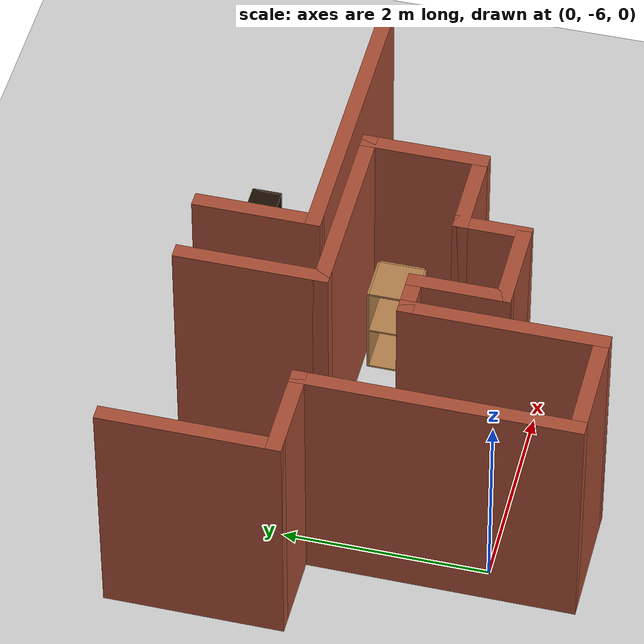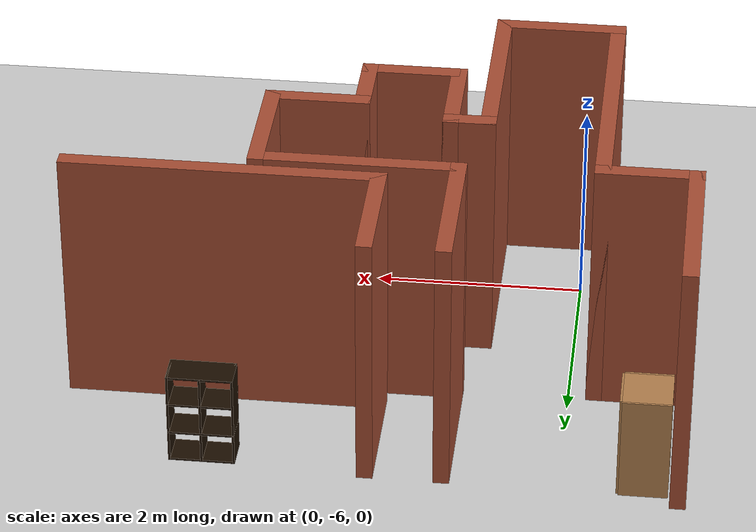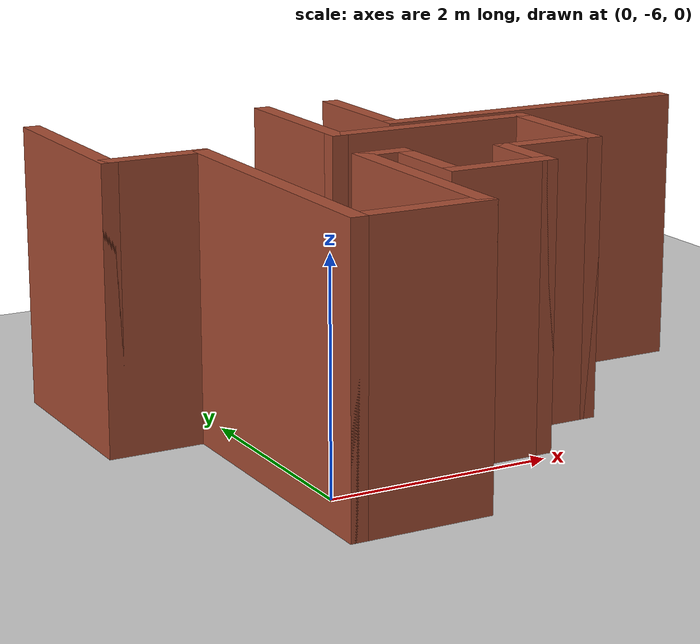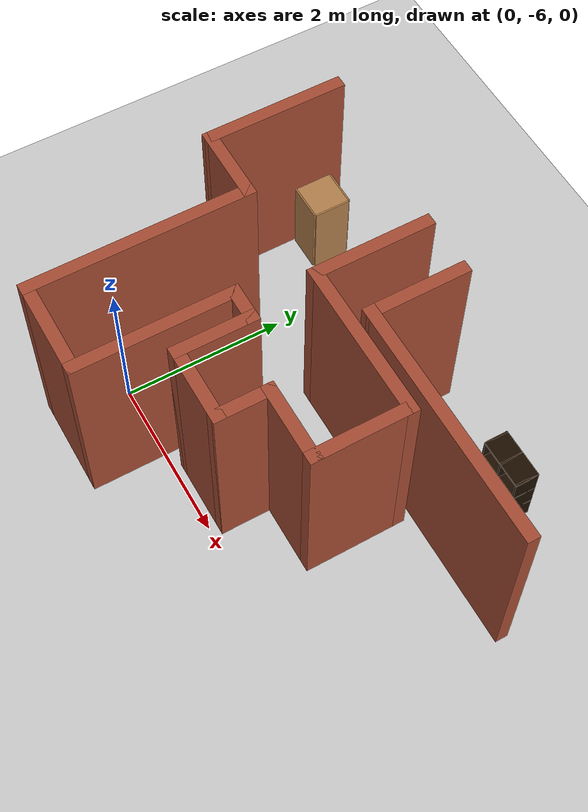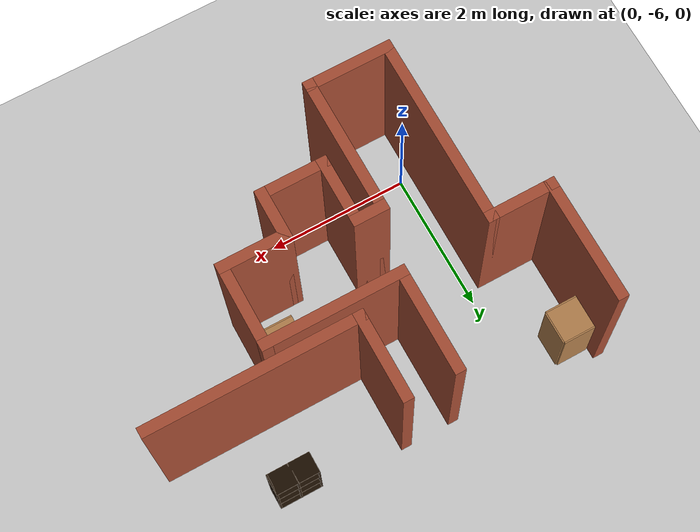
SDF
<sdf version="1.6">
 <world name="default">
  <model name="ground_plane">
   <static>1</static>
   <link name="link">
    <collision name="collision">
     <geometry><plane><normal>0 0 1</normal><size>100 100</size></plane></geometry>
     <surface><friction><ode><mu>100</mu><mu2>50</mu2></ode></friction></surface>
    </collision>
    <visual name="visual">
     <cast_shadows>0</cast_shadows>
     <geometry><plane><normal>0 0 1</normal><size>100 100</size></plane></geometry>
     <material>
      <script><uri>file://media/materials/scripts/gazebo.material</uri><name>Gazebo/Grey</name></script>
     </material>
    </visual>
   </link>
  </model>
  <model name="map_40">
   <link name="Wall_23">
    <pose>-2.475 -2.32798 0 0 0 -1.5708</pose>
    <visual name="Wall_23_Visual">
     <pose>0 0 1.25 0 -0 0</pose>
     <geometry><box><size>1.75 0.15 2.5</size></box></geometry>
     <material>
      <script><uri>file://media/materials/scripts/gazebo.material</uri><name>Gazebo/Bricks</name></script>
      <ambient>1 1 1 1</ambient>
      <shader type="pixel"/>
     </material>
     <meta><layer>0</layer></meta>
    </visual>
    <collision name="Wall_23_Collision">
     <pose>0 0 1.25 0 -0 0</pose>
     <geometry><box><size>1.75 0.15 2.5</size></box></geometry>
     <surface>
      <friction>
       <ode><mu>1</mu><mu2>1</mu2><fdir1>0 0 0</fdir1><slip1>0</slip1><slip2>0</slip2></ode>
       <torsional>
        <coefficient>1</coefficient>
        <patch_radius>0</patch_radius>
        <surface_radius>0</surface_radius>
        <use_patch_radius>1</use_patch_radius>
        <ode><slip>0</slip></ode>
       </torsional>
      </friction>
      <bounce><restitution_coefficient>0</restitution_coefficient><threshold>1e+06</threshold></bounce>
      <contact>
       <collide_without_contact>0</collide_without_contact>
       <collide_without_contact_bitmask>1</collide_without_contact_bitmask>
       <collide_bitmask>1</collide_bitmask>
       <ode>
        <soft_cfm>0</soft_cfm>
        <soft_erp>0.2</soft_erp>
        <kp>1e+13</kp>
        <kd>1</kd>
        <max_vel>0.01</max_vel>
        <min_depth>0</min_depth>
       </ode>
       <bullet>
        <split_impulse>1</split_impulse>
        <split_impulse_penetration_threshold>-0.01</split_impulse_penetration_threshold>
        <soft_cfm>0</soft_cfm>
        <soft_erp>0.2</soft_erp>
        <kp>1e+13</kp>
        <kd>1</kd>
       </bullet>
      </contact>
     </surface>
    </collision>
   </link>
   <link name="Wall_24">
    <pose>-2.05 -3.12798 0 0 -0 0</pose>
    <visual name="Wall_24_Visual">
     <pose>0 0 1.25 0 -0 0</pose>
     <geometry><box><size>1 0.15 2.5</size></box></geometry>
     <material>
      <script><uri>file://media/materials/scripts/gazebo.material</uri><name>Gazebo/Bricks</name></script>
      <ambient>1 1 1 1</ambient>
      <shader type="pixel"/>
     </material>
     <meta><layer>0</layer></meta>
    </visual>
    <collision name="Wall_24_Collision">
     <pose>0 0 1.25 0 -0 0</pose>
     <geometry><box><size>1 0.15 2.5</size></box></geometry>
     <surface>
      <friction>
       <ode><mu>1</mu><mu2>1</mu2><fdir1>0 0 0</fdir1><slip1>0</slip1><slip2>0</slip2></ode>
       <torsional>
        <coefficient>1</coefficient>
        <patch_radius>0</patch_radius>
        <surface_radius>0</surface_radius>
        <use_patch_radius>1</use_patch_radius>
        <ode><slip>0</slip></ode>
       </torsional>
      </friction>
      <bounce><restitution_coefficient>0</restitution_coefficient><threshold>1e+06</threshold></bounce>
      <contact>
       <collide_without_contact>0</collide_without_contact>
       <collide_without_contact_bitmask>1</collide_without_contact_bitmask>
       <collide_bitmask>1</collide_bitmask>
       <ode>
        <soft_cfm>0</soft_cfm>
        <soft_erp>0.2</soft_erp>
        <kp>1e+13</kp>
        <kd>1</kd>
        <max_vel>0.01</max_vel>
        <min_depth>0</min_depth>
       </ode>
       <bullet>
        <split_impulse>1</split_impulse>
        <split_impulse_penetration_threshold>-0.01</split_impulse_penetration_threshold>
        <soft_cfm>0</soft_cfm>
        <soft_erp>0.2</soft_erp>
        <kp>1e+13</kp>
        <kd>1</kd>
       </bullet>
      </contact>
     </surface>
    </collision>
   </link>
   <link name="Wall_25">
    <pose>-1.625 -4.42798 0 0 0 -1.5708</pose>
    <visual name="Wall_25_Visual">
     <pose>0 0 1.25 0 -0 0</pose>
     <geometry><box><size>2.75 0.15 2.5</size></box></geometry>
     <material>
      <script><uri>file://media/materials/scripts/gazebo.material</uri><name>Gazebo/Bricks</name></script>
      <ambient>1 1 1 1</ambient>
      <shader type="pixel"/>
     </material>
     <meta><layer>0</layer></meta>
    </visual>
    <collision name="Wall_25_Collision">
     <pose>0 0 1.25 0 -0 0</pose>
     <geometry><box><size>2.75 0.15 2.5</size></box></geometry>
     <surface>
      <friction>
       <ode><mu>1</mu><mu2>1</mu2><fdir1>0 0 0</fdir1><slip1>0</slip1><slip2>0</slip2></ode>
       <torsional>
        <coefficient>1</coefficient>
        <patch_radius>0</patch_radius>
        <surface_radius>0</surface_radius>
        <use_patch_radius>1</use_patch_radius>
        <ode><slip>0</slip></ode>
       </torsional>
      </friction>
      <bounce><restitution_coefficient>0</restitution_coefficient><threshold>1e+06</threshold></bounce>
      <contact>
       <collide_without_contact>0</collide_without_contact>
       <collide_without_contact_bitmask>1</collide_without_contact_bitmask>
       <collide_bitmask>1</collide_bitmask>
       <ode>
        <soft_cfm>0</soft_cfm>
        <soft_erp>0.2</soft_erp>
        <kp>1e+13</kp>
        <kd>1</kd>
        <max_vel>0.01</max_vel>
        <min_depth>0</min_depth>
       </ode>
       <bullet>
        <split_impulse>1</split_impulse>
        <split_impulse_penetration_threshold>-0.01</split_impulse_penetration_threshold>
        <soft_cfm>0</soft_cfm>
        <soft_erp>0.2</soft_erp>
        <kp>1e+13</kp>
        <kd>1</kd>
       </bullet>
      </contact>
     </surface>
    </collision>
   </link>
   <link name="Wall_26">
    <pose>-1.075 -5.72798 0 0 -0 0</pose>
    <visual name="Wall_26_Visual">
     <pose>0 0 1.25 0 -0 0</pose>
     <geometry><box><size>1.25 0.15 2.5</size></box></geometry>
     <material>
      <script><uri>file://media/materials/scripts/gazebo.material</uri><name>Gazebo/Bricks</name></script>
      <ambient>1 1 1 1</ambient>
      <shader type="pixel"/>
     </material>
     <meta><layer>0</layer></meta>
    </visual>
    <collision name="Wall_26_Collision">
     <pose>0 0 1.25 0 -0 0</pose>
     <geometry><box><size>1.25 0.15 2.5</size></box></geometry>
     <surface>
      <friction>
       <ode><mu>1</mu><mu2>1</mu2><fdir1>0 0 0</fdir1><slip1>0</slip1><slip2>0</slip2></ode>
       <torsional>
        <coefficient>1</coefficient>
        <patch_radius>0</patch_radius>
        <surface_radius>0</surface_radius>
        <use_patch_radius>1</use_patch_radius>
        <ode><slip>0</slip></ode>
       </torsional>
      </friction>
      <bounce><restitution_coefficient>0</restitution_coefficient><threshold>1e+06</threshold></bounce>
      <contact>
       <collide_without_contact>0</collide_without_contact>
       <collide_without_contact_bitmask>1</collide_without_contact_bitmask>
       <collide_bitmask>1</collide_bitmask>
       <ode>
        <soft_cfm>0</soft_cfm>
        <soft_erp>0.2</soft_erp>
        <kp>1e+13</kp>
        <kd>1</kd>
        <max_vel>0.01</max_vel>
        <min_depth>0</min_depth>
       </ode>
       <bullet>
        <split_impulse>1</split_impulse>
        <split_impulse_penetration_threshold>-0.01</split_impulse_penetration_threshold>
        <soft_cfm>0</soft_cfm>
        <soft_erp>0.2</soft_erp>
        <kp>1e+13</kp>
        <kd>1</kd>
       </bullet>
      </contact>
     </surface>
    </collision>
   </link>
   <link name="Wall_27">
    <pose>-0.525 -4.80298 0 0 -0 1.5708</pose>
    <visual name="Wall_27_Visual">
     <pose>0 0 1.25 0 -0 0</pose>
     <geometry><box><size>2 0.15 2.5</size></box></geometry>
     <material>
      <script><uri>file://media/materials/scripts/gazebo.material</uri><name>Gazebo/Bricks</name></script>
      <ambient>1 1 1 1</ambient>
      <shader type="pixel"/>
     </material>
     <meta><layer>0</layer></meta>
    </visual>
    <collision name="Wall_27_Collision">
     <pose>0 0 1.25 0 -0 0</pose>
     <geometry><box><size>2 0.15 2.5</size></box></geometry>
     <surface>
      <friction>
       <ode><mu>1</mu><mu2>1</mu2><fdir1>0 0 0</fdir1><slip1>0</slip1><slip2>0</slip2></ode>
       <torsional>
        <coefficient>1</coefficient>
        <patch_radius>0</patch_radius>
        <surface_radius>0</surface_radius>
        <use_patch_radius>1</use_patch_radius>
        <ode><slip>0</slip></ode>
       </torsional>
      </friction>
      <bounce><restitution_coefficient>0</restitution_coefficient><threshold>1e+06</threshold></bounce>
      <contact>
       <collide_without_contact>0</collide_without_contact>
       <collide_without_contact_bitmask>1</collide_without_contact_bitmask>
       <collide_bitmask>1</collide_bitmask>
       <ode>
        <soft_cfm>0</soft_cfm>
        <soft_erp>0.2</soft_erp>
        <kp>1e+13</kp>
        <kd>1</kd>
        <max_vel>0.01</max_vel>
        <min_depth>0</min_depth>
       </ode>
       <bullet>
        <split_impulse>1</split_impulse>
        <split_impulse_penetration_threshold>-0.01</split_impulse_penetration_threshold>
        <soft_cfm>0</soft_cfm>
        <soft_erp>0.2</soft_erp>
        <kp>1e+13</kp>
        <kd>1</kd>
       </bullet>
      </contact>
     </surface>
    </collision>
   </link>
   <link name="Wall_28">
    <pose>-0.35 -3.87798 0 0 -0 0</pose>
    <visual name="Wall_28_Visual">
     <pose>0 0 1.25 0 -0 0</pose>
     <geometry><box><size>0.5 0.15 2.5</size></box></geometry>
     <material>
      <script><uri>file://media/materials/scripts/gazebo.material</uri><name>Gazebo/Bricks</name></script>
      <ambient>1 1 1 1</ambient>
      <shader type="pixel"/>
     </material>
     <meta><layer>0</layer></meta>
    </visual>
    <collision name="Wall_28_Collision">
     <pose>0 0 1.25 0 -0 0</pose>
     <geometry><box><size>0.5 0.15 2.5</size></box></geometry>
     <surface>
      <friction>
       <ode><mu>1</mu><mu2>1</mu2><fdir1>0 0 0</fdir1><slip1>0</slip1><slip2>0</slip2></ode>
       <torsional>
        <coefficient>1</coefficient>
        <patch_radius>0</patch_radius>
        <surface_radius>0</surface_radius>
        <use_patch_radius>1</use_patch_radius>
        <ode><slip>0</slip></ode>
       </torsional>
      </friction>
      <bounce><restitution_coefficient>0</restitution_coefficient><threshold>1e+06</threshold></bounce>
      <contact>
       <collide_without_contact>0</collide_without_contact>
       <collide_without_contact_bitmask>1</collide_without_contact_bitmask>
       <collide_bitmask>1</collide_bitmask>
       <ode>
        <soft_cfm>0</soft_cfm>
        <soft_erp>0.2</soft_erp>
        <kp>1e+13</kp>
        <kd>1</kd>
        <max_vel>0.01</max_vel>
        <min_depth>0</min_depth>
       </ode>
       <bullet>
        <split_impulse>1</split_impulse>
        <split_impulse_penetration_threshold>-0.01</split_impulse_penetration_threshold>
        <soft_cfm>0</soft_cfm>
        <soft_erp>0.2</soft_erp>
        <kp>1e+13</kp>
        <kd>1</kd>
       </bullet>
      </contact>
     </surface>
    </collision>
   </link>
   <link name="Wall_29">
    <pose>-0.175 -4.30298 0 0 0 -1.5708</pose>
    <visual name="Wall_29_Visual">
     <pose>0 0 1.25 0 -0 0</pose>
     <geometry><box><size>1 0.15 2.5</size></box></geometry>
     <material>
      <script><uri>file://media/materials/scripts/gazebo.material</uri><name>Gazebo/Bricks</name></script>
      <ambient>1 1 1 1</ambient>
      <shader type="pixel"/>
     </material>
     <meta><layer>0</layer></meta>
    </visual>
    <collision name="Wall_29_Collision">
     <pose>0 0 1.25 0 -0 0</pose>
     <geometry><box><size>1 0.15 2.5</size></box></geometry>
     <surface>
      <friction>
       <ode><mu>1</mu><mu2>1</mu2><fdir1>0 0 0</fdir1><slip1>0</slip1><slip2>0</slip2></ode>
       <torsional>
        <coefficient>1</coefficient>
        <patch_radius>0</patch_radius>
        <surface_radius>0</surface_radius>
        <use_patch_radius>1</use_patch_radius>
        <ode><slip>0</slip></ode>
       </torsional>
      </friction>
      <bounce><restitution_coefficient>0</restitution_coefficient><threshold>1e+06</threshold></bounce>
      <contact>
       <collide_without_contact>0</collide_without_contact>
       <collide_without_contact_bitmask>1</collide_without_contact_bitmask>
       <collide_bitmask>1</collide_bitmask>
       <ode>
        <soft_cfm>0</soft_cfm>
        <soft_erp>0.2</soft_erp>
        <kp>1e+13</kp>
        <kd>1</kd>
        <max_vel>0.01</max_vel>
        <min_depth>0</min_depth>
       </ode>
       <bullet>
        <split_impulse>1</split_impulse>
        <split_impulse_penetration_threshold>-0.01</split_impulse_penetration_threshold>
        <soft_cfm>0</soft_cfm>
        <soft_erp>0.2</soft_erp>
        <kp>1e+13</kp>
        <kd>1</kd>
       </bullet>
      </contact>
     </surface>
    </collision>
   </link>
   <link name="Wall_30">
    <pose>0.25 -4.72798 0 0 -0 0</pose>
    <visual name="Wall_30_Visual">
     <pose>0 0 1.25 0 -0 0</pose>
     <geometry><box><size>1 0.15 2.5</size></box></geometry>
     <material>
      <script><uri>file://media/materials/scripts/gazebo.material</uri><name>Gazebo/Bricks</name></script>
      <ambient>1 1 1 1</ambient>
      <shader type="pixel"/>
     </material>
     <meta><layer>0</layer></meta>
    </visual>
    <collision name="Wall_30_Collision">
     <pose>0 0 1.25 0 -0 0</pose>
     <geometry><box><size>1 0.15 2.5</size></box></geometry>
     <surface>
      <friction>
       <ode><mu>1</mu><mu2>1</mu2><fdir1>0 0 0</fdir1><slip1>0</slip1><slip2>0</slip2></ode>
       <torsional>
        <coefficient>1</coefficient>
        <patch_radius>0</patch_radius>
        <surface_radius>0</surface_radius>
        <use_patch_radius>1</use_patch_radius>
        <ode><slip>0</slip></ode>
       </torsional>
      </friction>
      <bounce><restitution_coefficient>0</restitution_coefficient><threshold>1e+06</threshold></bounce>
      <contact>
       <collide_without_contact>0</collide_without_contact>
       <collide_without_contact_bitmask>1</collide_without_contact_bitmask>
       <collide_bitmask>1</collide_bitmask>
       <ode>
        <soft_cfm>0</soft_cfm>
        <soft_erp>0.2</soft_erp>
        <kp>1e+13</kp>
        <kd>1</kd>
        <max_vel>0.01</max_vel>
        <min_depth>0</min_depth>
       </ode>
       <bullet>
        <split_impulse>1</split_impulse>
        <split_impulse_penetration_threshold>-0.01</split_impulse_penetration_threshold>
        <soft_cfm>0</soft_cfm>
        <soft_erp>0.2</soft_erp>
        <kp>1e+13</kp>
        <kd>1</kd>
       </bullet>
      </contact>
     </surface>
    </collision>
   </link>
   <link name="Wall_31">
    <pose>0.675 -4.42798 0 0 -0 1.5708</pose>
    <visual name="Wall_31_Visual">
     <pose>0 0 1.25 0 -0 0</pose>
     <geometry><box><size>0.75 0.15 2.5</size></box></geometry>
     <material>
      <script><uri>file://media/materials/scripts/gazebo.material</uri><name>Gazebo/Bricks</name></script>
      <ambient>1 1 1 1</ambient>
      <shader type="pixel"/>
     </material>
     <meta><layer>0</layer></meta>
    </visual>
    <collision name="Wall_31_Collision">
     <pose>0 0 1.25 0 -0 0</pose>
     <geometry><box><size>0.75 0.15 2.5</size></box></geometry>
     <surface>
      <friction>
       <ode><mu>1</mu><mu2>1</mu2><fdir1>0 0 0</fdir1><slip1>0</slip1><slip2>0</slip2></ode>
       <torsional>
        <coefficient>1</coefficient>
        <patch_radius>0</patch_radius>
        <surface_radius>0</surface_radius>
        <use_patch_radius>1</use_patch_radius>
        <ode><slip>0</slip></ode>
       </torsional>
      </friction>
      <bounce><restitution_coefficient>0</restitution_coefficient><threshold>1e+06</threshold></bounce>
      <contact>
       <collide_without_contact>0</collide_without_contact>
       <collide_without_contact_bitmask>1</collide_without_contact_bitmask>
       <collide_bitmask>1</collide_bitmask>
       <ode>
        <soft_cfm>0</soft_cfm>
        <soft_erp>0.2</soft_erp>
        <kp>1e+13</kp>
        <kd>1</kd>
        <max_vel>0.01</max_vel>
        <min_depth>0</min_depth>
       </ode>
       <bullet>
        <split_impulse>1</split_impulse>
        <split_impulse_penetration_threshold>-0.01</split_impulse_penetration_threshold>
        <soft_cfm>0</soft_cfm>
        <soft_erp>0.2</soft_erp>
        <kp>1e+13</kp>
        <kd>1</kd>
       </bullet>
      </contact>
     </surface>
    </collision>
   </link>
   <link name="Wall_32">
    <pose>1.1 -4.12798 0 0 -0 0</pose>
    <visual name="Wall_32_Visual">
     <pose>0 0 1.25 0 -0 0</pose>
     <geometry><box><size>1 0.15 2.5</size></box></geometry>
     <material>
      <script><uri>file://media/materials/scripts/gazebo.material</uri><name>Gazebo/Bricks</name></script>
      <ambient>1 1 1 1</ambient>
      <shader type="pixel"/>
     </material>
     <meta><layer>0</layer></meta>
    </visual>
    <collision name="Wall_32_Collision">
     <pose>0 0 1.25 0 -0 0</pose>
     <geometry><box><size>1 0.15 2.5</size></box></geometry>
     <surface>
      <friction>
       <ode><mu>1</mu><mu2>1</mu2><fdir1>0 0 0</fdir1><slip1>0</slip1><slip2>0</slip2></ode>
       <torsional>
        <coefficient>1</coefficient>
        <patch_radius>0</patch_radius>
        <surface_radius>0</surface_radius>
        <use_patch_radius>1</use_patch_radius>
        <ode><slip>0</slip></ode>
       </torsional>
      </friction>
      <bounce><restitution_coefficient>0</restitution_coefficient><threshold>1e+06</threshold></bounce>
      <contact>
       <collide_without_contact>0</collide_without_contact>
       <collide_without_contact_bitmask>1</collide_without_contact_bitmask>
       <collide_bitmask>1</collide_bitmask>
       <ode>
        <soft_cfm>0</soft_cfm>
        <soft_erp>0.2</soft_erp>
        <kp>1e+13</kp>
        <kd>1</kd>
        <max_vel>0.01</max_vel>
        <min_depth>0</min_depth>
       </ode>
       <bullet>
        <split_impulse>1</split_impulse>
        <split_impulse_penetration_threshold>-0.01</split_impulse_penetration_threshold>
        <soft_cfm>0</soft_cfm>
        <soft_erp>0.2</soft_erp>
        <kp>1e+13</kp>
        <kd>1</kd>
       </bullet>
      </contact>
     </surface>
    </collision>
   </link>
   <link name="Wall_33">
    <pose>1.525 -3.57798 0 0 -0 1.5708</pose>
    <visual name="Wall_33_Visual">
     <pose>0 0 1.25 0 -0 0</pose>
     <geometry><box><size>1.25 0.15 2.5</size></box></geometry>
     <material>
      <script><uri>file://media/materials/scripts/gazebo.material</uri><name>Gazebo/Bricks</name></script>
      <ambient>1 1 1 1</ambient>
      <shader type="pixel"/>
     </material>
     <meta><layer>0</layer></meta>
    </visual>
    <collision name="Wall_33_Collision">
     <pose>0 0 1.25 0 -0 0</pose>
     <geometry><box><size>1.25 0.15 2.5</size></box></geometry>
     <surface>
      <friction>
       <ode><mu>1</mu><mu2>1</mu2><fdir1>0 0 0</fdir1><slip1>0</slip1><slip2>0</slip2></ode>
       <torsional>
        <coefficient>1</coefficient>
        <patch_radius>0</patch_radius>
        <surface_radius>0</surface_radius>
        <use_patch_radius>1</use_patch_radius>
        <ode><slip>0</slip></ode>
       </torsional>
      </friction>
      <bounce><restitution_coefficient>0</restitution_coefficient><threshold>1e+06</threshold></bounce>
      <contact>
       <collide_without_contact>0</collide_without_contact>
       <collide_without_contact_bitmask>1</collide_without_contact_bitmask>
       <collide_bitmask>1</collide_bitmask>
       <ode>
        <soft_cfm>0</soft_cfm>
        <soft_erp>0.2</soft_erp>
        <kp>1e+13</kp>
        <kd>1</kd>
        <max_vel>0.01</max_vel>
        <min_depth>0</min_depth>
       </ode>
       <bullet>
        <split_impulse>1</split_impulse>
        <split_impulse_penetration_threshold>-0.01</split_impulse_penetration_threshold>
        <soft_cfm>0</soft_cfm>
        <soft_erp>0.2</soft_erp>
        <kp>1e+13</kp>
        <kd>1</kd>
       </bullet>
      </contact>
     </surface>
    </collision>
   </link>
   <link name="Wall_34">
    <pose>0.6 -3.02798 0 0 -0 3.14159</pose>
    <visual name="Wall_34_Visual">
     <pose>0 0 1.25 0 -0 0</pose>
     <geometry><box><size>2 0.15 2.5</size></box></geometry>
     <material>
      <script><uri>file://media/materials/scripts/gazebo.material</uri><name>Gazebo/Bricks</name></script>
      <ambient>1 1 1 1</ambient>
      <shader type="pixel"/>
     </material>
     <meta><layer>0</layer></meta>
    </visual>
    <collision name="Wall_34_Collision">
     <pose>0 0 1.25 0 -0 0</pose>
     <geometry><box><size>2 0.15 2.5</size></box></geometry>
     <surface>
      <friction>
       <ode><mu>1</mu><mu2>1</mu2><fdir1>0 0 0</fdir1><slip1>0</slip1><slip2>0</slip2></ode>
       <torsional>
        <coefficient>1</coefficient>
        <patch_radius>0</patch_radius>
        <surface_radius>0</surface_radius>
        <use_patch_radius>1</use_patch_radius>
        <ode><slip>0</slip></ode>
       </torsional>
      </friction>
      <bounce><restitution_coefficient>0</restitution_coefficient><threshold>1e+06</threshold></bounce>
      <contact>
       <collide_without_contact>0</collide_without_contact>
       <collide_without_contact_bitmask>1</collide_without_contact_bitmask>
       <collide_bitmask>1</collide_bitmask>
       <ode>
        <soft_cfm>0</soft_cfm>
        <soft_erp>0.2</soft_erp>
        <kp>1e+13</kp>
        <kd>1</kd>
        <max_vel>0.01</max_vel>
        <min_depth>0</min_depth>
       </ode>
       <bullet>
        <split_impulse>1</split_impulse>
        <split_impulse_penetration_threshold>-0.01</split_impulse_penetration_threshold>
        <soft_cfm>0</soft_cfm>
        <soft_erp>0.2</soft_erp>
        <kp>1e+13</kp>
        <kd>1</kd>
       </bullet>
      </contact>
     </surface>
    </collision>
   </link>
   <link name="Wall_35">
    <pose>-0.325 -2.35298 0 0 -0 1.5708</pose>
    <visual name="Wall_35_Visual">
     <pose>0 0 1.25 0 -0 0</pose>
     <geometry><box><size>1.5 0.15 2.5</size></box></geometry>
     <material>
      <script><uri>file://media/materials/scripts/gazebo.material</uri><name>Gazebo/Bricks</name></script>
      <ambient>1 1 1 1</ambient>
      <shader type="pixel"/>
     </material>
     <meta><layer>0</layer></meta>
    </visual>
    <collision name="Wall_35_Collision">
     <pose>0 0 1.25 0 -0 0</pose>
     <geometry><box><size>1.5 0.15 2.5</size></box></geometry>
     <surface>
      <friction>
       <ode><mu>1</mu><mu2>1</mu2><fdir1>0 0 0</fdir1><slip1>0</slip1><slip2>0</slip2></ode>
       <torsional>
        <coefficient>1</coefficient>
        <patch_radius>0</patch_radius>
        <surface_radius>0</surface_radius>
        <use_patch_radius>1</use_patch_radius>
        <ode><slip>0</slip></ode>
       </torsional>
      </friction>
      <bounce><restitution_coefficient>0</restitution_coefficient><threshold>1e+06</threshold></bounce>
      <contact>
       <collide_without_contact>0</collide_without_contact>
       <collide_without_contact_bitmask>1</collide_without_contact_bitmask>
       <collide_bitmask>1</collide_bitmask>
       <ode>
        <soft_cfm>0</soft_cfm>
        <soft_erp>0.2</soft_erp>
        <kp>1e+13</kp>
        <kd>1</kd>
        <max_vel>0.01</max_vel>
        <min_depth>0</min_depth>
       </ode>
       <bullet>
        <split_impulse>1</split_impulse>
        <split_impulse_penetration_threshold>-0.01</split_impulse_penetration_threshold>
        <soft_cfm>0</soft_cfm>
        <soft_erp>0.2</soft_erp>
        <kp>1e+13</kp>
        <kd>1</kd>
       </bullet>
      </contact>
     </surface>
    </collision>
   </link>
   <link name="Wall_42">
    <pose>0.375 -2.22798 0 0 0 -1.5708</pose>
    <visual name="Wall_42_Visual">
     <pose>0 0 1.25 0 -0 0</pose>
     <geometry><box><size>1.25 0.15 2.5</size></box></geometry>
     <material>
      <script><uri>file://media/materials/scripts/gazebo.material</uri><name>Gazebo/Bricks</name></script>
      <ambient>1 1 1 1</ambient>
      <shader type="pixel"/>
     </material>
     <meta><layer>0</layer></meta>
    </visual>
    <collision name="Wall_42_Collision">
     <pose>0 0 1.25 0 -0 0</pose>
     <geometry><box><size>1.25 0.15 2.5</size></box></geometry>
     <surface>
      <friction>
       <ode><mu>1</mu><mu2>1</mu2><fdir1>0 0 0</fdir1><slip1>0</slip1><slip2>0</slip2></ode>
       <torsional>
        <coefficient>1</coefficient>
        <patch_radius>0</patch_radius>
        <surface_radius>0</surface_radius>
        <use_patch_radius>1</use_patch_radius>
        <ode><slip>0</slip></ode>
       </torsional>
      </friction>
      <bounce><restitution_coefficient>0</restitution_coefficient><threshold>1e+06</threshold></bounce>
      <contact>
       <collide_without_contact>0</collide_without_contact>
       <collide_without_contact_bitmask>1</collide_without_contact_bitmask>
       <collide_bitmask>1</collide_bitmask>
       <ode>
        <soft_cfm>0</soft_cfm>
        <soft_erp>0.2</soft_erp>
        <kp>1e+13</kp>
        <kd>1</kd>
        <max_vel>0.01</max_vel>
        <min_depth>0</min_depth>
       </ode>
       <bullet>
        <split_impulse>1</split_impulse>
        <split_impulse_penetration_threshold>-0.01</split_impulse_penetration_threshold>
        <soft_cfm>0</soft_cfm>
        <soft_erp>0.2</soft_erp>
        <kp>1e+13</kp>
        <kd>1</kd>
       </bullet>
      </contact>
     </surface>
    </collision>
   </link>
   <link name="Wall_43">
    <pose>1.8 -2.77798 0 0 -0 0</pose>
    <visual name="Wall_43_Visual">
     <pose>0 0 1.25 0 -0 0</pose>
     <geometry><box><size>3 0.15 2.5</size></box></geometry>
     <material>
      <script><uri>file://media/materials/scripts/gazebo.material</uri><name>Gazebo/Bricks</name></script>
      <ambient>1 1 1 1</ambient>
      <shader type="pixel"/>
     </material>
     <meta><layer>0</layer></meta>
    </visual>
    <collision name="Wall_43_Collision">
     <pose>0 0 1.25 0 -0 0</pose>
     <geometry><box><size>3 0.15 2.5</size></box></geometry>
     <surface>
      <friction>
       <ode><mu>1</mu><mu2>1</mu2><fdir1>0 0 0</fdir1><slip1>0</slip1><slip2>0</slip2></ode>
       <torsional>
        <coefficient>1</coefficient>
        <patch_radius>0</patch_radius>
        <surface_radius>0</surface_radius>
        <use_patch_radius>1</use_patch_radius>
        <ode><slip>0</slip></ode>
       </torsional>
      </friction>
      <bounce><restitution_coefficient>0</restitution_coefficient><threshold>1e+06</threshold></bounce>
      <contact>
       <collide_without_contact>0</collide_without_contact>
       <collide_without_contact_bitmask>1</collide_without_contact_bitmask>
       <collide_bitmask>1</collide_bitmask>
       <ode>
        <soft_cfm>0</soft_cfm>
        <soft_erp>0.2</soft_erp>
        <kp>1e+13</kp>
        <kd>1</kd>
        <max_vel>0.01</max_vel>
        <min_depth>0</min_depth>
       </ode>
       <bullet>
        <split_impulse>1</split_impulse>
        <split_impulse_penetration_threshold>-0.01</split_impulse_penetration_threshold>
        <soft_cfm>0</soft_cfm>
        <soft_erp>0.2</soft_erp>
        <kp>1e+13</kp>
        <kd>1</kd>
       </bullet>
      </contact>
     </surface>
    </collision>
   </link>
   <static>1</static>
   <pose>1.38689 -1.09784 0 0 -0 0</pose>
  </model>
  <model name="6_Cube_StorageE">
   <link name="Wall_0">
    <pose>0 0 0.01 0 -0 0</pose>
    <inertial>
     <mass>1.6201</mass>
     <inertia><ixx>0.0119</ixx><iyy>0.0631</iyy><izz>0.0513</izz><ixy>0</ixy><ixz>0</ixz><iyz>0</iyz></inertia>
    </inertial>
    <collision name="Wall_0_Collision"><geometry><box><size>0.616 0.296 0.02</size></box></geometry></collision>
    <visual name="Wall_0_Visual">
     <geometry><box><size>0.616 0.296 0.02</size></box></geometry>
     <material>
      <script><uri>file://media/materials/scripts/gazebo.material</uri><name>Gazebo/Grey</name></script>
      <ambient>0.105882 0.0509804 0 1</ambient>
     </material>
    </visual>
   </link>
   <joint name="0_2" type="fixed">
    <pose>-0.308 0 0 0 -0 0</pose>
    <parent>Wall_2</parent>
    <child>Wall_0</child>
    <axis>
     <xyz>1 0 0</xyz>
     <use_parent_model_frame>0</use_parent_model_frame>
     <limit><lower>-1e+16</lower><upper>1e+16</upper></limit>
    </axis>
   </joint>
   <joint name="0_12" type="fixed">
    <parent>Wall_12</parent>
    <child>Wall_0</child>
    <axis>
     <xyz>0 0 1</xyz>
     <use_parent_model_frame>0</use_parent_model_frame>
     <limit><lower>-1e+16</lower><upper>1e+16</upper></limit>
    </axis>
   </joint>
   <joint name="0_4" type="fixed">
    <pose>0.308 0 0 0 -0 0</pose>
    <parent>Wall_4</parent>
    <child>Wall_0</child>
    <axis>
     <xyz>1 0 0</xyz>
     <use_parent_model_frame>0</use_parent_model_frame>
     <limit><lower>-1e+16</lower><upper>1e+16</upper></limit>
    </axis>
   </joint>
   <link name="Wall_10">
    <pose>0 0 0.61 0 -0 0</pose>
    <inertial>
     <mass>1.6201</mass>
     <inertia><ixx>0.0119</ixx><iyy>0.0631</iyy><izz>0.0513</izz><ixy>0</ixy><ixz>0</ixz><iyz>0</iyz></inertia>
    </inertial>
    <collision name="Wall_10_Collision"><geometry><box><size>0.616 0.296 0.02</size></box></geometry></collision>
    <visual name="Wall_10_Visual">
     <geometry><box><size>0.616 0.296 0.02</size></box></geometry>
     <material>
      <script><uri>file://media/materials/scripts/gazebo.material</uri><name>Gazebo/Grey</name></script>
      <ambient>0.105882 0.0509804 0 1</ambient>
     </material>
    </visual>
   </link>
   <joint name="10_2" type="fixed">
    <pose>-0.308 0 0 0 -0 0</pose>
    <parent>Wall_2</parent>
    <child>Wall_10</child>
    <axis>
     <xyz>1 0 0</xyz>
     <use_parent_model_frame>0</use_parent_model_frame>
     <limit><lower>-1e+16</lower><upper>1e+16</upper></limit>
    </axis>
   </joint>
   <joint name="10_12" type="fixed">
    <parent>Wall_12</parent>
    <child>Wall_10</child>
    <axis>
     <xyz>0 0 1</xyz>
     <use_parent_model_frame>0</use_parent_model_frame>
     <limit><lower>-1e+16</lower><upper>1e+16</upper></limit>
    </axis>
   </joint>
   <joint name="10_4" type="fixed">
    <pose>0.308 0 0 0 -0 0</pose>
    <parent>Wall_4</parent>
    <child>Wall_10</child>
    <axis>
     <xyz>1 0 0</xyz>
     <use_parent_model_frame>0</use_parent_model_frame>
     <limit><lower>-1e+16</lower><upper>1e+16</upper></limit>
    </axis>
   </joint>
   <link name="Wall_12">
    <pose>0 0 0.4575 0 -0 0</pose>
    <inertial>
     <mass>2.4065</mass>
     <inertia><ixx>0.0177</ixx><iyy>0.1855</iyy><izz>0.168</izz><ixy>0</ixy><ixz>0</ixz><iyz>0</iyz></inertia>
    </inertial>
    <collision name="Wall_12_Collision"><geometry><box><size>0.02 0.296 0.915</size></box></geometry></collision>
    <visual name="Wall_12_Visual">
     <geometry><box><size>0.02 0.296 0.915</size></box></geometry>
     <material>
      <script><uri>file://media/materials/scripts/gazebo.material</uri><name>Gazebo/Grey</name></script>
      <ambient>0.105882 0.0509804 0 1</ambient>
     </material>
    </visual>
   </link>
   <link name="Wall_2">
    <pose>-0.298 0 0.4575 0 -0 0</pose>
    <inertial>
     <mass>2.4065</mass>
     <inertia><ixx>0.0177</ixx><iyy>0.1855</iyy><izz>0.168</izz><ixy>0</ixy><ixz>0</ixz><iyz>0</iyz></inertia>
    </inertial>
    <collision name="Wall_2_Collision"><geometry><box><size>0.02 0.296 0.915</size></box></geometry></collision>
    <visual name="Wall_2_Visual">
     <geometry><box><size>0.02 0.296 0.915</size></box></geometry>
     <material>
      <script><uri>file://media/materials/scripts/gazebo.material</uri><name>Gazebo/Grey</name></script>
      <ambient>0.105882 0.0509804 0 1</ambient>
     </material>
    </visual>
   </link>
   <link name="Wall_4">
    <pose>0.298 0 0.4575 0 -0 0</pose>
    <inertial>
     <mass>2.4065</mass>
     <inertia><ixx>0.0177</ixx><iyy>0.1855</iyy><izz>0.168</izz><ixy>0</ixy><ixz>0</ixz><iyz>0</iyz></inertia>
    </inertial>
    <collision name="Wall_4_Collision"><geometry><box><size>0.02 0.296 0.915</size></box></geometry></collision>
    <visual name="Wall_4_Visual">
     <geometry><box><size>0.02 0.296 0.915</size></box></geometry>
     <material>
      <script><uri>file://media/materials/scripts/gazebo.material</uri><name>Gazebo/Grey</name></script>
      <ambient>0.105882 0.0509804 0 1</ambient>
     </material>
    </visual>
   </link>
   <link name="Wall_6">
    <pose>0 0 0.905 0 -0 0</pose>
    <inertial>
     <mass>1.6201</mass>
     <inertia><ixx>0.0119</ixx><iyy>0.0631</iyy><izz>0.0513</izz><ixy>0</ixy><ixz>0</ixz><iyz>0</iyz></inertia>
    </inertial>
    <collision name="Wall_6_Collision"><geometry><box><size>0.616 0.296 0.02</size></box></geometry></collision>
    <visual name="Wall_6_Visual">
     <geometry><box><size>0.616 0.296 0.02</size></box></geometry>
     <material>
      <script><uri>file://media/materials/scripts/gazebo.material</uri><name>Gazebo/Grey</name></script>
      <ambient>0.105882 0.0509804 0 1</ambient>
     </material>
    </visual>
   </link>
   <joint name="6_2" type="fixed">
    <pose>-0.308 0 0 0 -0 0</pose>
    <parent>Wall_2</parent>
    <child>Wall_6</child>
    <axis>
     <xyz>2 0 0</xyz>
     <use_parent_model_frame>0</use_parent_model_frame>
     <limit><lower>-1e+16</lower><upper>1e+16</upper></limit>
    </axis>
   </joint>
   <joint name="6_12" type="fixed">
    <parent>Wall_12</parent>
    <child>Wall_6</child>
    <axis>
     <xyz>0 0 1</xyz>
     <use_parent_model_frame>0</use_parent_model_frame>
     <limit><lower>-1e+16</lower><upper>1e+16</upper></limit>
    </axis>
   </joint>
   <joint name="6_4" type="fixed">
    <pose>0.308 0 0 0 -0 0</pose>
    <parent>Wall_4</parent>
    <child>Wall_6</child>
    <axis>
     <xyz>1 0 0</xyz>
     <use_parent_model_frame>0</use_parent_model_frame>
     <limit><lower>-1e+16</lower><upper>1e+16</upper></limit>
    </axis>
   </joint>
   <link name="Wall_8">
    <pose>0 0 0.305 0 -0 0</pose>
    <inertial>
     <mass>1.6201</mass>
     <inertia><ixx>0.0119</ixx><iyy>0.0631</iyy><izz>0.0513</izz><ixy>0</ixy><ixz>0</ixz><iyz>0</iyz></inertia>
    </inertial>
    <collision name="Wall_8_Collision"><geometry><box><size>0.616 0.296 0.02</size></box></geometry></collision>
    <visual name="Wall_8_Visual">
     <geometry><box><size>0.616 0.296 0.02</size></box></geometry>
     <material>
      <script><uri>file://media/materials/scripts/gazebo.material</uri><name>Gazebo/Grey</name></script>
      <ambient>0.105882 0.0509804 0 1</ambient>
     </material>
    </visual>
   </link>
   <joint name="8_2" type="fixed">
    <pose>-0.308 0 0 0 -0 0</pose>
    <parent>Wall_2</parent>
    <child>Wall_8</child>
    <axis>
     <xyz>1 0 0</xyz>
     <use_parent_model_frame>0</use_parent_model_frame>
     <limit><lower>-1e+16</lower><upper>1e+16</upper></limit>
    </axis>
   </joint>
   <joint name="8_12" type="fixed">
    <parent>Wall_12</parent>
    <child>Wall_8</child>
    <axis>
     <xyz>0 0 1</xyz>
     <use_parent_model_frame>0</use_parent_model_frame>
     <limit><lower>-1e+16</lower><upper>1e+16</upper></limit>
    </axis>
   </joint>
   <joint name="8_4" type="fixed">
    <pose>0.308 0 0 0 -0 0</pose>
    <parent>Wall_4</parent>
    <child>Wall_8</child>
    <axis>
     <xyz>1 0 0</xyz>
     <use_parent_model_frame>0</use_parent_model_frame>
     <limit><lower>-1e+16</lower><upper>1e+16</upper></limit>
    </axis>
   </joint>
   <static>1</static>
   <pose>3.27075 -2.92959 0 0 -0 0</pose>
  </model>
  <model name="cabinet_0">
   <static>1</static>
   <link name="cabinet_bottom_plate">
    <inertial>
     <pose>0 0 -1 0 -0 0</pose>
     <inertia><ixx>2.05</ixx><ixy>0</ixy><ixz>0</ixz><iyy>2.05</iyy><iyz>0</iyz><izz>2.05</izz></inertia>
     <mass>25</mass>
    </inertial>
    <collision name="cabinet_bottom_plate_geom">
     <pose>0 0 0.01 0 -0 0</pose>
     <geometry><box><size>0.45 0.45 0.02</size></box></geometry>
    </collision>
    <visual name="cabinet_bottom_plate_geom_visual">
     <pose>0 0 0.01 0 -0 0</pose>
     <geometry><box><size>0.45 0.45 0.02</size></box></geometry>
     <material>
      <script><uri>file://media/materials/scripts/gazebo.material</uri><name>Gazebo/Wood</name></script>
     </material>
    </visual>
    <collision name="cabinet_bottom_plate_geom_cabinet_back_plate">
     <pose>0.235 0 0.51 0 -0 0</pose>
     <geometry><box><size>0.02 0.45 1.02</size></box></geometry>
    </collision>
    <visual name="cabinet_bottom_plate_geom_cabinet_back_plate_visual">
     <pose>0.235 0 0.51 0 -0 0</pose>
     <geometry><box><size>0.02 0.45 1.02</size></box></geometry>
     <material>
      <script><uri>file://media/materials/scripts/gazebo.material</uri><name>Gazebo/Wood</name></script>
     </material>
    </visual>
    <collision name="cabinet_bottom_plate_geom_cabinet_left_plate">
     <pose>0 0.235 0.51 0 -0 0</pose>
     <geometry><box><size>0.45 0.02 1.02</size></box></geometry>
    </collision>
    <visual name="cabinet_bottom_plate_geom_cabinet_left_plate_visual">
     <pose>0 0.235 0.51 0 -0 0</pose>
     <geometry><box><size>0.45 0.02 1.02</size></box></geometry>
     <material>
      <script><uri>file://media/materials/scripts/gazebo.material</uri><name>Gazebo/Wood</name></script>
     </material>
    </visual>
    <collision name="cabinet_bottom_plate_geom_cabinet_middle_plate">
     <pose>0 0 0.51 0 -0 0</pose>
     <geometry><box><size>0.45 0.45 0.02</size></box></geometry>
    </collision>
    <visual name="cabinet_bottom_plate_geom_cabinet_middle_plate_visual">
     <pose>0 0 0.51 0 -0 0</pose>
     <geometry><box><size>0.45 0.45 0.02</size></box></geometry>
     <material>
      <script><uri>file://media/materials/scripts/gazebo.material</uri><name>Gazebo/Wood</name></script>
     </material>
    </visual>
    <collision name="cabinet_bottom_plate_geom_cabinet_right_plate">
     <pose>0 -0.235 0.51 0 -0 0</pose>
     <geometry><box><size>0.45 0.02 1.02</size></box></geometry>
    </collision>
    <visual name="cabinet_bottom_plate_geom_cabinet_right_plate_visual">
     <pose>0 -0.235 0.51 0 -0 0</pose>
     <geometry><box><size>0.45 0.02 1.02</size></box></geometry>
     <material>
      <script><uri>file://media/materials/scripts/gazebo.material</uri><name>Gazebo/Wood</name></script>
     </material>
    </visual>
    <collision name="cabinet_bottom_plate_geom_cabinet_top_plate">
     <pose>0 0 1.01 0 -0 0</pose>
     <geometry><box><size>0.45 0.45 0.02</size></box></geometry>
    </collision>
    <visual name="cabinet_bottom_plate_geom_cabinet_top_plate_visual">
     <pose>0 0 1.01 0 -0 0</pose>
     <geometry><box><size>0.45 0.45 0.02</size></box></geometry>
     <material>
      <script><uri>file://media/materials/scripts/gazebo.material</uri><name>Gazebo/Wood</name></script>
     </material>
    </visual>
   </link>
   <pose>-0.770738 -2.9469 0 0 -0 0</pose>
  </model>
  <model name="cabinet_1">
   <static>1</static>
   <link name="cabinet_bottom_plate">
    <inertial>
     <pose>0 0 -1 0 -0 0</pose>
     <inertia><ixx>2.05</ixx><ixy>0</ixy><ixz>0</ixz><iyy>2.05</iyy><iyz>0</iyz><izz>2.05</izz></inertia>
     <mass>25</mass>
    </inertial>
    <collision name="cabinet_bottom_plate_geom">
     <pose>0 0 0.01 0 -0 0</pose>
     <geometry><box><size>0.45 0.45 0.02</size></box></geometry>
    </collision>
    <visual name="cabinet_bottom_plate_geom_visual">
     <pose>0 0 0.01 0 -0 0</pose>
     <geometry><box><size>0.45 0.45 0.02</size></box></geometry>
     <material>
      <script><uri>file://media/materials/scripts/gazebo.material</uri><name>Gazebo/Wood</name></script>
     </material>
    </visual>
    <collision name="cabinet_bottom_plate_geom_cabinet_back_plate">
     <pose>0.235 0 0.51 0 -0 0</pose>
     <geometry><box><size>0.02 0.45 1.02</size></box></geometry>
    </collision>
    <visual name="cabinet_bottom_plate_geom_cabinet_back_plate_visual">
     <pose>0.235 0 0.51 0 -0 0</pose>
     <geometry><box><size>0.02 0.45 1.02</size></box></geometry>
     <material>
      <script><uri>file://media/materials/scripts/gazebo.material</uri><name>Gazebo/Wood</name></script>
     </material>
    </visual>
    <collision name="cabinet_bottom_plate_geom_cabinet_left_plate">
     <pose>0 0.235 0.51 0 -0 0</pose>
     <geometry><box><size>0.45 0.02 1.02</size></box></geometry>
    </collision>
    <visual name="cabinet_bottom_plate_geom_cabinet_left_plate_visual">
     <pose>0 0.235 0.51 0 -0 0</pose>
     <geometry><box><size>0.45 0.02 1.02</size></box></geometry>
     <material>
      <script><uri>file://media/materials/scripts/gazebo.material</uri><name>Gazebo/Wood</name></script>
     </material>
    </visual>
    <collision name="cabinet_bottom_plate_geom_cabinet_middle_plate">
     <pose>0 0 0.51 0 -0 0</pose>
     <geometry><box><size>0.45 0.45 0.02</size></box></geometry>
    </collision>
    <visual name="cabinet_bottom_plate_geom_cabinet_middle_plate_visual">
     <pose>0 0 0.51 0 -0 0</pose>
     <geometry><box><size>0.45 0.45 0.02</size></box></geometry>
     <material>
      <script><uri>file://media/materials/scripts/gazebo.material</uri><name>Gazebo/Wood</name></script>
     </material>
    </visual>
    <collision name="cabinet_bottom_plate_geom_cabinet_right_plate">
     <pose>0 -0.235 0.51 0 -0 0</pose>
     <geometry><box><size>0.45 0.02 1.02</size></box></geometry>
    </collision>
    <visual name="cabinet_bottom_plate_geom_cabinet_right_plate_visual">
     <pose>0 -0.235 0.51 0 -0 0</pose>
     <geometry><box><size>0.45 0.02 1.02</size></box></geometry>
     <material>
      <script><uri>file://media/materials/scripts/gazebo.material</uri><name>Gazebo/Wood</name></script>
     </material>
    </visual>
    <collision name="cabinet_bottom_plate_geom_cabinet_top_plate">
     <pose>0 0 1.01 0 -0 0</pose>
     <geometry><box><size>0.45 0.45 0.02</size></box></geometry>
    </collision>
    <visual name="cabinet_bottom_plate_geom_cabinet_top_plate_visual">
     <pose>0 0 1.01 0 -0 0</pose>
     <geometry><box><size>0.45 0.45 0.02</size></box></geometry>
     <material>
      <script><uri>file://media/materials/scripts/gazebo.material</uri><name>Gazebo/Wood</name></script>
     </material>
    </visual>
   </link>
   <pose>2.55465 -4.49509 0 0 -0 0</pose>
  </model>
 </world>
</sdf>
